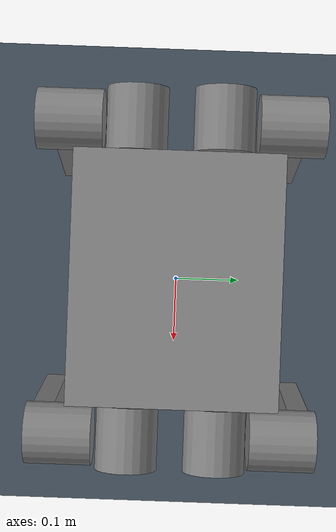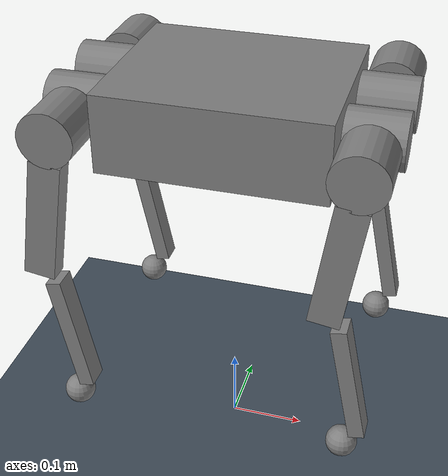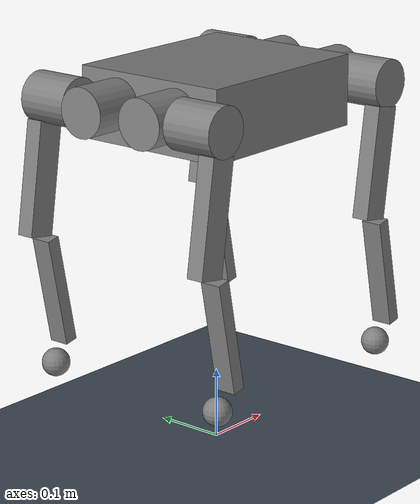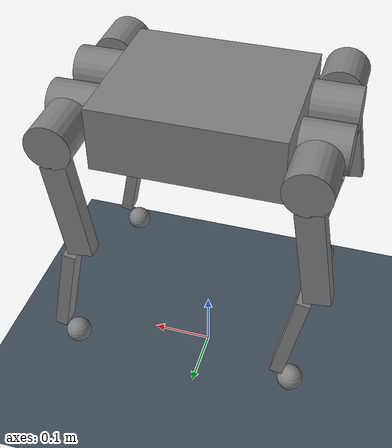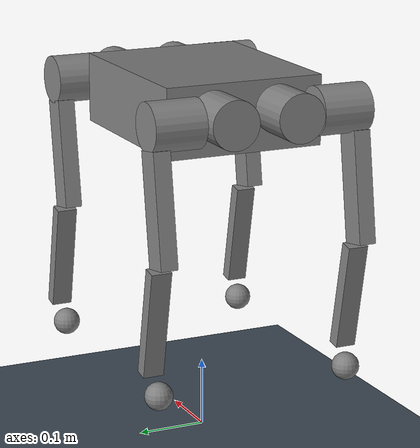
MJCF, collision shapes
<mujoco model="little_white_v3_wtw_scene"><include file="robot.xml" /><worldbody><light pos="0 0 3" dir="0 0 -1" directional="true" /><geom name="floor" type="plane" size="0 0 .1" rgba=".25 .3 .35 1" contype="1" conaffinity="1" condim="3" friction=".8 .005 .0005" solref=".01 1" /></worldbody></mujoco>

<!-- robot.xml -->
<mujoco model="little_white_v3_wtw">
  <compiler angle="radian" />
  <default>
    <geom friction="0.4" margin="0.001" condim="1" />
    <joint damping="0.02" armature="0.004" frictionloss="0.1" />
    <default class="hip">
      <joint axis="1 0 0" range="-1.0472 1.0472" />
      <motor ctrlrange="-27 27" />
    </default>
    <default class="thigh">
      <joint axis="0 1 0" range="-1.5708 1.5708" />
      <motor ctrlrange="-27 27" />
    </default>
    <default class="calf">
      <joint axis="0 1 0" range="-2.78 0" />
      <motor ctrlrange="-27 27" />
    </default>
    <default class="visual">
      <geom contype="0" conaffinity="0" group="2" mass="0" />
    </default>
    <default class="collision">
      <geom group="3" contype="0" conaffinity="1" solref="0.01 1" />
      <default class="foot">
        <geom size="0.022" pos="-0.002 0 -0.213" priority="1" condim="3" friction="0.4 0.02 0.01" />
      </default>
    </default>
  </default>
  <asset>
    <mesh name="part_001_solid_001" file="upstream/meshes/part_001_solid_001.stl" scale="0.001 0.001 0.001" />
    <mesh name="part_004_solid_004" file="upstream/meshes/part_004_solid_004.stl" scale="0.001 0.001 0.001" />
    <mesh name="part_002_solid_002" file="upstream/meshes/part_002_solid_002.stl" scale="0.001 0.001 0.001" />
    <mesh name="part_003_solid_003" file="upstream/meshes/part_003_solid_003.stl" scale="0.001 0.001 0.001" />
    <mesh name="part_005_solid_005" file="upstream/meshes/part_005_solid_005.stl" scale="0.001 0.001 0.001" />
    <mesh name="part_012_solid_012" file="upstream/meshes/part_012_solid_012.stl" scale="0.001 0.001 0.001" />
    <mesh name="part_010_solid_010" file="upstream/meshes/part_010_solid_010.stl" scale="0.001 0.001 0.001" />
    <mesh name="part_011_solid_011" file="upstream/meshes/part_011_solid_011.stl" scale="0.001 0.001 0.001" />
    <mesh name="part_013_solid_013" file="upstream/meshes/part_013_solid_013.stl" scale="0.001 0.001 0.001" />
    <mesh name="part_016_solid_016" file="upstream/meshes/part_016_solid_016.stl" scale="0.001 0.001 0.001" />
    <mesh name="part_014_solid_014" file="upstream/meshes/part_014_solid_014.stl" scale="0.001 0.001 0.001" />
    <mesh name="part_015_solid_015" file="upstream/meshes/part_015_solid_015.stl" scale="0.001 0.001 0.001" />
    <mesh name="part_017_solid_017" file="upstream/meshes/part_017_solid_017.stl" scale="0.001 0.001 0.001" />
    <mesh name="part_008_solid_008" file="upstream/meshes/part_008_solid_008.stl" scale="0.001 0.001 0.001" />
    <mesh name="part_006_solid_006" file="upstream/meshes/part_006_solid_006.stl" scale="0.001 0.001 0.001" />
    <mesh name="part_007_solid_007" file="upstream/meshes/part_007_solid_007.stl" scale="0.001 0.001 0.001" />
    <mesh name="part_009_solid_009" file="upstream/meshes/part_009_solid_009.stl" scale="0.001 0.001 0.001" />
  </asset>
  <worldbody>
    <body name="base_link" pos="0 0 0.5">
      <freejoint name="root_freejoint" />
      <site name="imu" pos="0 0 0" size="0.005" rgba="0 0 0 0" />
      <inertial pos="1.0001092e-06 4.3170748e-10 0.0078429831" mass="3.3" quat="1 -2.0982208e-07 -5.7044994e-05 -9.5520418e-10" diaginertia="0.012110839 0.027347278 0.035650761" />
      <geom name="base_link_visual" type="mesh" mesh="part_001_solid_001" pos="0 0 0.008" euler="0 0 0" class="visual" contype="0" conaffinity="0" condim="3" margin="0" friction="0.8 0.005 0.0005" solref="0.01 1" />
      <geom name="base_link_collision" type="box" size="0.14225 0.1175 0.0505" pos="0 0 0" class="collision" contype="1" conaffinity="1" condim="3" margin="0" friction="0.8 0.005 0.0005" solref="0.01 1" />
      <body name="FR_Hip_link" pos="0.14025 -0.065 0.008">
        <joint name="FR_hip_joint" class="hip" />
        <inertial pos="0.036273224 0.014080145 -2.972646e-06" mass="0.424" quat="0.9866879 0.00020292697 8.0362638e-05 -0.16262514" diaginertia="0.00025114211 0.00021632098 0.00026844231" />
        <geom name="FR_Hip_visual" type="mesh" mesh="part_004_solid_004" pos="-0.14025 0.065 0" euler="0 0 0" class="visual" contype="0" conaffinity="0" condim="3" margin="0" friction="0.8 0.005 0.0005" solref="0.01 1" />
        <geom name="FR_Hip_collision" type="cylinder" size="0.035 0.036375" pos="0.04 0.01525 0" euler="1.57079632679 1.57079632679 0" class="collision" contype="1" conaffinity="1" condim="3" margin="0" friction="0.8 0.005 0.0005" solref="0.01 1" />
        <body name="FR_Thigh_link" pos="0.038 0.0139565 0">
          <joint name="FR_thigh_joint" class="thigh" />
          <inertial pos="-0.0033482955 -0.0729403 -0.029495593" mass="0.7" quat="0.99055532 -0.12729352 0.050868465 -0.002986626" diaginertia="0.0024534273 0.0023982199 0.00035349994" />
          <geom name="FR_Thigh_visual" type="mesh" mesh="part_002_solid_002" pos="-0.17825 0.0510435 0" euler="0 0 0" class="visual" contype="0" conaffinity="0" condim="3" margin="0" friction="0.8 0.005 0.0005" solref="0.01 1" />
          <geom name="FR_Thigh_motor_collision" type="cylinder" size="0.035 0.0375" pos="0 -0.075 0" euler="1.57079632679 0 0" class="collision" contype="1" conaffinity="1" condim="3" margin="0" friction="0.8 0.005 0.0005" solref="0.01 1" />
          <geom name="FR_Thigh_body_collision" type="box" size="0.02 0.0125 0.08" pos="-0.016 -0.1 -0.11" euler="0 0.15 0" class="collision" contype="1" conaffinity="1" condim="3" margin="0" friction="0.8 0.005 0.0005" solref="0.01 1" />
          <body name="FR_Calf_link" pos="-0.0013103131 -0.1108335 -0.19482217">
            <joint name="FR_calf_joint" class="calf" />
            <inertial pos="0.011984502 0.01490326 -0.084211679" mass="0.04" quat="0.99817692 0.0028823425 -0.056513946 0.020992911" diaginertia="0.00014760355 0.00014983082 4.0189278e-06" />
            <geom name="FR_Calf_visual" type="mesh" mesh="part_003_solid_003" pos="-0.17693969 0.161877 0.19482217" euler="0 0 0" class="visual" contype="0" conaffinity="0" condim="3" margin="0" friction="0.8 0.005 0.0005" solref="0.01 1" />
            <geom name="FR_Calf_collision" type="box" size="0.01 0.015 0.08" pos="0.008 0.012 -0.08" euler="0 -0.2 0" class="collision" contype="1" conaffinity="1" condim="3" margin="0" friction="0.8 0.005 0.0005" solref="0.01 1" />
            <body name="FR_Foot_link" pos="-0.17693969 0.161877 0.19482217">
              <inertial pos="0.18085106 -0.14645474 -0.38077391" mass="0.01" quat="0.96325499 -0.0018163118 -0.26857906 0.0013501294" diaginertia="1.6671745e-06 2.3916253e-06 1.5920954e-06" />
              <geom name="FR_Foot_visual" type="mesh" mesh="part_005_solid_005" pos="0 0 0" euler="0 0 0" class="visual" contype="0" conaffinity="0" condim="3" margin="0" friction="0.8 0.005 0.0005" solref="0.01 1" />
              <geom name="FR_Foot_collision" type="sphere" size="0.02" pos="0.18085106 -0.14645474 -0.38077391" class="collision" contype="1" conaffinity="1" condim="3" margin="0" friction="0.8 0.005 0.0005" solref="0.01 1" priority="1" />
              <site name="FR_foot" pos="0.18085106 -0.14645474 -0.38077391" size="0.005" />
            </body>
          </body>
        </body>
      </body>
      <body name="FL_Hip_link" pos="0.14025 0.065000002 0.007999999">
        <joint name="FL_hip_joint" class="hip" />
        <inertial pos="0.03627342 -0.014080067 -1.8343334e-06" mass="0.424" quat="0.98668738 -0.00011257004 -0.00017020105 0.16262831" diaginertia="0.00025114341 0.00021631894 0.00026844157" />
        <geom name="FL_Hip_visual" type="mesh" mesh="part_012_solid_012" pos="-0.14025 -0.065000002 1.01e-09" euler="0 0 0" class="visual" contype="0" conaffinity="0" condim="3" margin="0" friction="0.8 0.005 0.0005" solref="0.01 1" />
        <geom name="FL_Hip_collision" type="cylinder" size="0.035 0.036375" pos="0.04 -0.01525 0" euler="1.57079632679 1.57079632679 0" class="collision" contype="1" conaffinity="1" condim="3" margin="0" friction="0.8 0.005 0.0005" solref="0.01 1" />
        <body name="FL_Thigh_link" pos="0.038 -0.014998435 1.01e-09">
          <joint name="FL_thigh_joint" class="thigh" />
          <inertial pos="-0.0033483429 0.073982221 -0.029495544" mass="0.7" quat="0.99055533 0.12729377 0.050867177 0.0029953258" diaginertia="0.0024534297 0.0023982233 0.00035350168" />
          <geom name="FL_Thigh_visual" type="mesh" mesh="part_010_solid_010" pos="-0.17825 -0.050001567 0" euler="0 0 0" class="visual" contype="0" conaffinity="0" condim="3" margin="0" friction="0.8 0.005 0.0005" solref="0.01 1" />
          <geom name="FL_Thigh_motor_collision" type="cylinder" size="0.035 0.0375" pos="0 0.075 0" euler="1.57079632679 0 0" class="collision" contype="1" conaffinity="1" condim="3" margin="0" friction="0.8 0.005 0.0005" solref="0.01 1" />
          <geom name="FL_Thigh_body_collision" type="box" size="0.02 0.0125 0.08" pos="-0.016 0.1 -0.11" euler="0 0.15 0" class="collision" contype="1" conaffinity="1" condim="3" margin="0" friction="0.8 0.005 0.0005" solref="0.01 1" />
          <body name="FL_Calf_link" pos="-0.0013103131 0.11187543 -0.19482217">
            <joint name="FL_calf_joint" class="calf" />
            <inertial pos="0.011984508 -0.014903264 -0.084211673" mass="0.04" quat="0.99817691 -0.0028823159 -0.056513941 -0.020993316" diaginertia="0.00014760347 0.00014983074 4.0189295e-06" />
            <geom name="FL_Calf_visual" type="mesh" mesh="part_011_solid_011" pos="-0.17693969 -0.161877 0.19482217" euler="0 0 0" class="visual" contype="0" conaffinity="0" condim="3" margin="0" friction="0.8 0.005 0.0005" solref="0.01 1" />
            <geom name="FL_Calf_collision" type="box" size="0.01 0.015 0.08" pos="0.008 -0.012 -0.08" euler="0 -0.2 0" class="collision" contype="1" conaffinity="1" condim="3" margin="0" friction="0.8 0.005 0.0005" solref="0.01 1" />
            <body name="FL_Foot_link" pos="-0.17693969 -0.161877 0.19482217">
              <inertial pos="0.18085106 0.14645474 -0.38077391" mass="0.01" quat="0.96325498 0.0018163132 -0.26857906 -0.0013501275" diaginertia="1.6671745e-06 2.3916253e-06 1.5920954e-06" />
              <geom name="FL_Foot_visual" type="mesh" mesh="part_013_solid_013" pos="0 0 0" euler="0 0 0" class="visual" contype="0" conaffinity="0" condim="3" margin="0" friction="0.8 0.005 0.0005" solref="0.01 1" />
              <geom name="FL_Foot_collision" type="sphere" size="0.02" pos="0.18085106 0.14645474 -0.38077391" class="collision" contype="1" conaffinity="1" condim="3" margin="0" friction="0.8 0.005 0.0005" solref="0.01 1" priority="1" />
              <site name="FL_foot" pos="0.18085106 0.14645474 -0.38077391" size="0.005" />
            </body>
          </body>
        </body>
      </body>
      <body name="RL_Hip_link" pos="-0.14225 0.065000002 0.007999999">
        <joint name="RL_hip_joint" class="hip" />
        <inertial pos="-0.03427342 -0.014080067 1.8363604e-06" mass="0.424" quat="0.98668738 0.00011256952 -0.00017020146 -0.16262831" diaginertia="0.00025114341 0.00021631894 0.00026844157" />
        <geom name="RL_Hip_visual" type="mesh" mesh="part_016_solid_016" pos="0.14225 -0.065000002 1.01e-09" euler="0 0 0" class="visual" contype="0" conaffinity="0" condim="3" margin="0" friction="0.8 0.005 0.0005" solref="0.01 1" />
        <geom name="RL_Hip_collision" type="cylinder" size="0.035 0.036375" pos="-0.04 -0.01525 0" euler="1.57079632679 1.57079632679 0" class="collision" contype="1" conaffinity="1" condim="3" margin="0" friction="0.8 0.005 0.0005" solref="0.01 1" />
        <body name="RL_Thigh_link" pos="-0.036 -0.013956502 1.01e-09">
          <joint name="RL_thigh_joint" class="thigh" />
          <inertial pos="-0.0033813806 0.072940294 -0.029495514" mass="0.7" quat="0.99051823 0.12668516 0.052544667 -0.0079724177" diaginertia="0.0024536987 0.0023989131 0.00035401002" />
          <geom name="RL_Thigh_visual" type="mesh" mesh="part_014_solid_014" pos="0.17825 -0.0510435 0" euler="0 0 0" class="visual" contype="0" conaffinity="0" condim="3" margin="0" friction="0.8 0.005 0.0005" solref="0.01 1" />
          <geom name="RL_Thigh_motor_collision" type="cylinder" size="0.035 0.0375" pos="0 0.075 0" euler="1.57079632679 0 0" class="collision" contype="1" conaffinity="1" condim="3" margin="0" friction="0.8 0.005 0.0005" solref="0.01 1" />
          <geom name="RL_Thigh_body_collision" type="box" size="0.02 0.0125 0.08" pos="-0.016 0.1 -0.11" euler="0 0.15 0" class="collision" contype="1" conaffinity="1" condim="3" margin="0" friction="0.8 0.005 0.0005" solref="0.01 1" />
          <body name="RL_Calf_link" pos="-0.0013103131 0.1108335 -0.19482217">
            <joint name="RL_calf_joint" class="calf" />
            <inertial pos="0.011983461 -0.01490346 -0.084211094" mass="0.04" quat="0.99818677 -0.0029068574 -0.056531251 -0.020467993" diaginertia="0.00014760743 0.00014983298 4.0185402e-06" />
            <geom name="RL_Calf_visual" type="mesh" mesh="part_015_solid_015" pos="0.17956031 -0.161877 0.19482217" euler="0 0 0" class="visual" contype="0" conaffinity="0" condim="3" margin="0" friction="0.8 0.005 0.0005" solref="0.01 1" />
            <geom name="RL_Calf_collision" type="box" size="0.01 0.015 0.08" pos="0.008 -0.012 -0.08" euler="0 -0.2 0" class="collision" contype="1" conaffinity="1" condim="3" margin="0" friction="0.8 0.005 0.0005" solref="0.01 1" />
            <body name="RL_Foot_link" pos="0.17956031 -0.161877 0.19482217">
              <inertial pos="-0.17564894 0.14645474 -0.38077391" mass="0.01" quat="0.96325498 0.0018163132 -0.26857906 -0.0013501275" diaginertia="1.6671745e-06 2.3916253e-06 1.5920954e-06" />
              <geom name="RL_Foot_visual" type="mesh" mesh="part_017_solid_017" pos="0 0 0" euler="0 0 0" class="visual" contype="0" conaffinity="0" condim="3" margin="0" friction="0.8 0.005 0.0005" solref="0.01 1" />
              <geom name="RL_Foot_collision" type="sphere" size="0.02" pos="-0.17564894 0.14645474 -0.38077391" class="collision" contype="1" conaffinity="1" condim="3" margin="0" friction="0.8 0.005 0.0005" solref="0.01 1" priority="1" />
              <site name="RL_foot" pos="-0.17564894 0.14645474 -0.38077391" size="0.005" />
            </body>
          </body>
        </body>
      </body>
      <body name="RR_Hip_link" pos="-0.14025 -0.065 0.008">
        <joint name="RR_hip_joint" class="hip" />
        <inertial pos="-0.036273224 0.014080145 2.9726575e-06" mass="0.424" quat="0.9866879 -0.00020292687 8.0362823e-05 0.16262514" diaginertia="0.00025114211 0.00021632098 0.00026844231" />
        <geom name="RR_Hip_visual" type="mesh" mesh="part_008_solid_008" pos="0.14025 0.065 0" euler="0 0 0" class="visual" contype="0" conaffinity="0" condim="3" margin="0" friction="0.8 0.005 0.0005" solref="0.01 1" />
        <geom name="RR_Hip_collision" type="cylinder" size="0.035 0.036375" pos="-0.04 0.01525 0" euler="1.57079632679 1.57079632679 0" class="collision" contype="1" conaffinity="1" condim="3" margin="0" friction="0.8 0.005 0.0005" solref="0.01 1" />
        <body name="RR_Thigh_link" pos="-0.038 0.014998433 0">
          <joint name="RR_thigh_joint" class="thigh" />
          <inertial pos="-0.0033813331 -0.073982239 -0.029495563" mass="0.7" quat="0.99051813 -0.12668489 0.052545932 0.0079809668" diaginertia="0.0024536964 0.0023989097 0.00035400829" />
          <geom name="RR_Thigh_visual" type="mesh" mesh="part_006_solid_006" pos="0.17825 0.050001567 0" euler="0 0 0" class="visual" contype="0" conaffinity="0" condim="3" margin="0" friction="0.8 0.005 0.0005" solref="0.01 1" />
          <geom name="RR_Thigh_motor_collision" type="cylinder" size="0.035 0.0375" pos="0 -0.075 0" euler="1.57079632679 0 0" class="collision" contype="1" conaffinity="1" condim="3" margin="0" friction="0.8 0.005 0.0005" solref="0.01 1" />
          <geom name="RR_Thigh_body_collision" type="box" size="0.02 0.0125 0.08" pos="-0.016 -0.1 -0.11" euler="0 0.15 0" class="collision" contype="1" conaffinity="1" condim="3" margin="0" friction="0.8 0.005 0.0005" solref="0.01 1" />
          <body name="RR_Calf_link" pos="-0.0013188508 -0.089835433 -0.19482211">
            <joint name="RR_calf_joint" class="calf" />
            <inertial pos="0.011991993 -0.0071365441 -0.084211157" mass="0.04" quat="0.99818678 0.0029068841 -0.056531256 0.020467587" diaginertia="0.00014760751 0.00014983305 4.0185385e-06" />
            <geom name="RR_Calf_visual" type="mesh" mesh="part_007_solid_007" pos="0.17956885 0.139837 0.19482211" euler="0 0 0" class="visual" contype="0" conaffinity="0" condim="3" margin="0" friction="0.8 0.005 0.0005" solref="0.01 1" />
            <geom name="RR_Calf_collision" type="box" size="0.01 0.015 0.08" pos="0.008 -0.012 -0.08" euler="0 -0.2 0" class="collision" contype="1" conaffinity="1" condim="3" margin="0" friction="0.8 0.005 0.0005" solref="0.01 1" />
            <body name="RR_Foot_link" pos="0.17956885 0.139837 0.19482211">
              <inertial pos="-0.17564894 -0.14645474 -0.38077391" mass="0.01" quat="0.96325499 -0.0018163118 -0.26857906 0.0013501294" diaginertia="1.6671745e-06 2.3916253e-06 1.5920954e-06" />
              <geom name="RR_Foot_visual" type="mesh" mesh="part_009_solid_009" pos="0 0 0" euler="0 0 0" class="visual" contype="0" conaffinity="0" condim="3" margin="0" friction="0.8 0.005 0.0005" solref="0.01 1" />
              <geom name="RR_Foot_collision" type="sphere" size="0.02" pos="-0.17564894 -0.14645474 -0.38077391" class="collision" contype="1" conaffinity="1" condim="3" margin="0" friction="0.8 0.005 0.0005" solref="0.01 1" priority="1" />
              <site name="RR_foot" pos="-0.17564894 -0.14645474 -0.38077391" size="0.005" />
            </body>
          </body>
        </body>
      </body>
    </body>
  </worldbody>
  <actuator>
    <motor class="hip" name="FL_hip" joint="FL_hip_joint" ctrlrange="-27 27" ctrllimited="true" />
    <motor class="thigh" name="FL_thigh" joint="FL_thigh_joint" ctrlrange="-27 27" ctrllimited="true" />
    <motor class="calf" name="FL_calf" joint="FL_calf_joint" ctrlrange="-27 27" ctrllimited="true" />
    <motor class="hip" name="FR_hip" joint="FR_hip_joint" ctrlrange="-27 27" ctrllimited="true" />
    <motor class="thigh" name="FR_thigh" joint="FR_thigh_joint" ctrlrange="-27 27" ctrllimited="true" />
    <motor class="calf" name="FR_calf" joint="FR_calf_joint" ctrlrange="-27 27" ctrllimited="true" />
    <motor class="hip" name="RL_hip" joint="RL_hip_joint" ctrlrange="-27 27" ctrllimited="true" />
    <motor class="thigh" name="RL_thigh" joint="RL_thigh_joint" ctrlrange="-27 27" ctrllimited="true" />
    <motor class="calf" name="RL_calf" joint="RL_calf_joint" ctrlrange="-27 27" ctrllimited="true" />
    <motor class="hip" name="RR_hip" joint="RR_hip_joint" ctrlrange="-27 27" ctrllimited="true" />
    <motor class="thigh" name="RR_thigh" joint="RR_thigh_joint" ctrlrange="-27 27" ctrllimited="true" />
    <motor class="calf" name="RR_calf" joint="RR_calf_joint" ctrlrange="-27 27" ctrllimited="true" />
  </actuator>
  <option timestep="0.005" integrator="implicitfast" cone="elliptic" iterations="10" ls_iterations="20" />
</mujoco>
